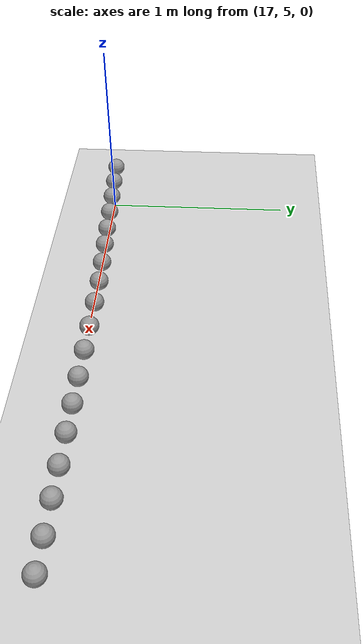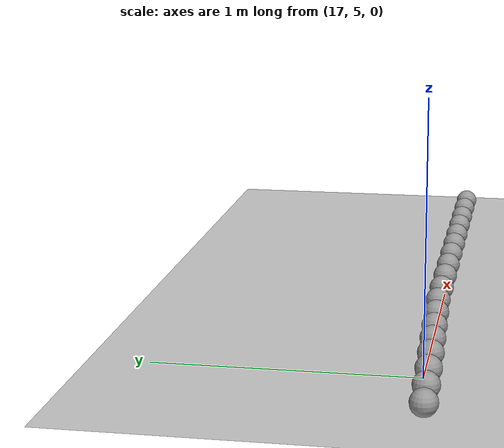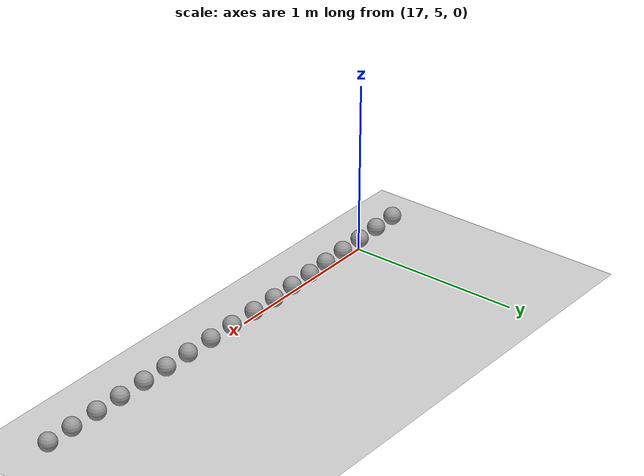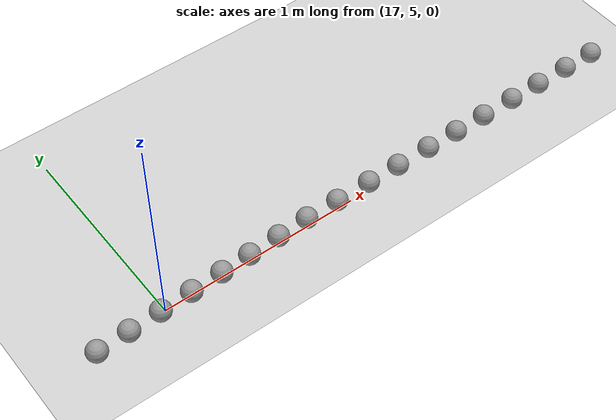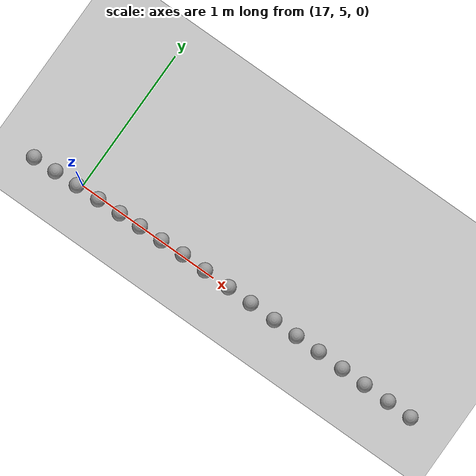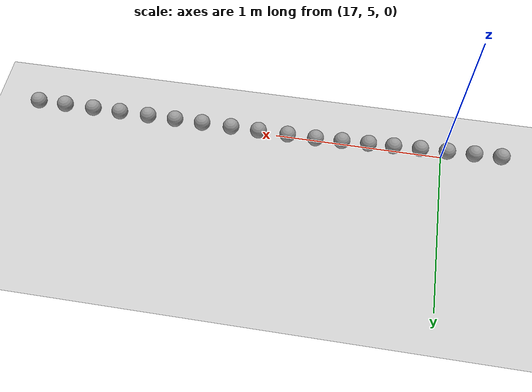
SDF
<sdf version="1.6">
 <world name="default">
  <model name="ground_plane">
   <static>1</static>
   <link name="link">
    <collision name="collision">
     <geometry><plane><normal>0 0 1</normal><size>100 100</size></plane></geometry>
     <surface><friction><ode><mu>100</mu><mu2>50</mu2></ode></friction></surface>
    </collision>
    <visual name="visual">
     <cast_shadows>0</cast_shadows>
     <geometry><plane><normal>0 0 1</normal><size>100 100</size></plane></geometry>
     <material>
      <script><uri>file://media/materials/scripts/gazebo.material</uri><name>Gazebo/Grey</name></script>
     </material>
    </visual>
   </link>
  </model>
  <model name="unit_sphere_0_360">
   <pose>19.500000 5.000000 0.050000 0 -0 0</pose>
   <link name="link">
    <inertial>
     <mass>1</mass>
     <inertia><ixx>0.1</ixx><ixy>0</ixy><ixz>0</ixz><iyy>0.1</iyy><iyz>0</iyz><izz>0.1</izz></inertia>
    </inertial>
    <collision name="collision"><geometry><sphere><radius>0.050000</radius></sphere></geometry></collision>
    <visual name="visual">
     <geometry><sphere><radius>0.050000</radius></sphere></geometry>
     <material>
      <script><name>Gazebo/Grey</name><uri>file://media/materials/scripts/gazebo.material</uri></script>
     </material>
    </visual>
   </link>
  </model>
  <model name="unit_sphere_0_361">
   <pose>19.330000 5.001000 0.050000 0 -0 0</pose>
   <link name="link">
    <inertial>
     <mass>1</mass>
     <inertia><ixx>0.1</ixx><ixy>0</ixy><ixz>0</ixz><iyy>0.1</iyy><iyz>0</iyz><izz>0.1</izz></inertia>
    </inertial>
    <collision name="collision"><geometry><sphere><radius>0.050000</radius></sphere></geometry></collision>
    <visual name="visual">
     <geometry><sphere><radius>0.050000</radius></sphere></geometry>
     <material>
      <script><name>Gazebo/Grey</name><uri>file://media/materials/scripts/gazebo.material</uri></script>
     </material>
    </visual>
   </link>
  </model>
  <model name="unit_sphere_0_362">
   <pose>19.150000 5.002000 0.050000 0 -0 0</pose>
   <link name="link">
    <inertial>
     <mass>1</mass>
     <inertia><ixx>0.1</ixx><ixy>0</ixy><ixz>0</ixz><iyy>0.1</iyy><iyz>0</iyz><izz>0.1</izz></inertia>
    </inertial>
    <collision name="collision"><geometry><sphere><radius>0.050000</radius></sphere></geometry></collision>
    <visual name="visual">
     <geometry><sphere><radius>0.050000</radius></sphere></geometry>
     <material>
      <script><name>Gazebo/Grey</name><uri>file://media/materials/scripts/gazebo.material</uri></script>
     </material>
    </visual>
   </link>
  </model>
  <model name="unit_sphere_0_363">
   <pose>18.980000 5.003000 0.050000 0 -0 0</pose>
   <link name="link">
    <inertial>
     <mass>1</mass>
     <inertia><ixx>0.1</ixx><ixy>0</ixy><ixz>0</ixz><iyy>0.1</iyy><iyz>0</iyz><izz>0.1</izz></inertia>
    </inertial>
    <collision name="collision"><geometry><sphere><radius>0.050000</radius></sphere></geometry></collision>
    <visual name="visual">
     <geometry><sphere><radius>0.050000</radius></sphere></geometry>
     <material>
      <script><name>Gazebo/Grey</name><uri>file://media/materials/scripts/gazebo.material</uri></script>
     </material>
    </visual>
   </link>
  </model>
  <model name="unit_sphere_0_364">
   <pose>18.800000 5.004000 0.050000 0 -0 0</pose>
   <link name="link">
    <inertial>
     <mass>1</mass>
     <inertia><ixx>0.1</ixx><ixy>0</ixy><ixz>0</ixz><iyy>0.1</iyy><iyz>0</iyz><izz>0.1</izz></inertia>
    </inertial>
    <collision name="collision"><geometry><sphere><radius>0.050000</radius></sphere></geometry></collision>
    <visual name="visual">
     <geometry><sphere><radius>0.050000</radius></sphere></geometry>
     <material>
      <script><name>Gazebo/Grey</name><uri>file://media/materials/scripts/gazebo.material</uri></script>
     </material>
    </visual>
   </link>
  </model>
  <model name="unit_sphere_0_365">
   <pose>18.630000 5.005000 0.050000 0 -0 0</pose>
   <link name="link">
    <inertial>
     <mass>1</mass>
     <inertia><ixx>0.1</ixx><ixy>0</ixy><ixz>0</ixz><iyy>0.1</iyy><iyz>0</iyz><izz>0.1</izz></inertia>
    </inertial>
    <collision name="collision"><geometry><sphere><radius>0.050000</radius></sphere></geometry></collision>
    <visual name="visual">
     <geometry><sphere><radius>0.050000</radius></sphere></geometry>
     <material>
      <script><name>Gazebo/Grey</name><uri>file://media/materials/scripts/gazebo.material</uri></script>
     </material>
    </visual>
   </link>
  </model>
  <model name="unit_sphere_0_366">
   <pose>18.460000 5.006000 0.050000 0 -0 0</pose>
   <link name="link">
    <inertial>
     <mass>1</mass>
     <inertia><ixx>0.1</ixx><ixy>0</ixy><ixz>0</ixz><iyy>0.1</iyy><iyz>0</iyz><izz>0.1</izz></inertia>
    </inertial>
    <collision name="collision"><geometry><sphere><radius>0.050000</radius></sphere></geometry></collision>
    <visual name="visual">
     <geometry><sphere><radius>0.050000</radius></sphere></geometry>
     <material>
      <script><name>Gazebo/Grey</name><uri>file://media/materials/scripts/gazebo.material</uri></script>
     </material>
    </visual>
   </link>
  </model>
  <model name="unit_sphere_0_367">
   <pose>18.280000 5.007000 0.050000 0 -0 0</pose>
   <link name="link">
    <inertial>
     <mass>1</mass>
     <inertia><ixx>0.1</ixx><ixy>0</ixy><ixz>0</ixz><iyy>0.1</iyy><iyz>0</iyz><izz>0.1</izz></inertia>
    </inertial>
    <collision name="collision"><geometry><sphere><radius>0.050000</radius></sphere></geometry></collision>
    <visual name="visual">
     <geometry><sphere><radius>0.050000</radius></sphere></geometry>
     <material>
      <script><name>Gazebo/Grey</name><uri>file://media/materials/scripts/gazebo.material</uri></script>
     </material>
    </visual>
   </link>
  </model>
  <model name="unit_sphere_0_368">
   <pose>18.110000 5.008000 0.050000 0 -0 0</pose>
   <link name="link">
    <inertial>
     <mass>1</mass>
     <inertia><ixx>0.1</ixx><ixy>0</ixy><ixz>0</ixz><iyy>0.1</iyy><iyz>0</iyz><izz>0.1</izz></inertia>
    </inertial>
    <collision name="collision"><geometry><sphere><radius>0.050000</radius></sphere></geometry></collision>
    <visual name="visual">
     <geometry><sphere><radius>0.050000</radius></sphere></geometry>
     <material>
      <script><name>Gazebo/Grey</name><uri>file://media/materials/scripts/gazebo.material</uri></script>
     </material>
    </visual>
   </link>
  </model>
  <model name="unit_sphere_0_369">
   <pose>17.930000 5.009000 0.050000 0 -0 0</pose>
   <link name="link">
    <inertial>
     <mass>1</mass>
     <inertia><ixx>0.1</ixx><ixy>0</ixy><ixz>0</ixz><iyy>0.1</iyy><iyz>0</iyz><izz>0.1</izz></inertia>
    </inertial>
    <collision name="collision"><geometry><sphere><radius>0.050000</radius></sphere></geometry></collision>
    <visual name="visual">
     <geometry><sphere><radius>0.050000</radius></sphere></geometry>
     <material>
      <script><name>Gazebo/Grey</name><uri>file://media/materials/scripts/gazebo.material</uri></script>
     </material>
    </visual>
   </link>
  </model>
  <model name="unit_sphere_0_370">
   <pose>17.760000 5.010000 0.050000 0 -0 0</pose>
   <link name="link">
    <inertial>
     <mass>1</mass>
     <inertia><ixx>0.1</ixx><ixy>0</ixy><ixz>0</ixz><iyy>0.1</iyy><iyz>0</iyz><izz>0.1</izz></inertia>
    </inertial>
    <collision name="collision"><geometry><sphere><radius>0.050000</radius></sphere></geometry></collision>
    <visual name="visual">
     <geometry><sphere><radius>0.050000</radius></sphere></geometry>
     <material>
      <script><name>Gazebo/Grey</name><uri>file://media/materials/scripts/gazebo.material</uri></script>
     </material>
    </visual>
   </link>
  </model>
  <model name="unit_sphere_0_371">
   <pose>17.600000 5.004000 0.050000 0 -0 0</pose>
   <link name="link">
    <inertial>
     <mass>1</mass>
     <inertia><ixx>0.1</ixx><ixy>0</ixy><ixz>0</ixz><iyy>0.1</iyy><iyz>0</iyz><izz>0.1</izz></inertia>
    </inertial>
    <collision name="collision"><geometry><sphere><radius>0.050000</radius></sphere></geometry></collision>
    <visual name="visual">
     <geometry><sphere><radius>0.050000</radius></sphere></geometry>
     <material>
      <script><name>Gazebo/Grey</name><uri>file://media/materials/scripts/gazebo.material</uri></script>
     </material>
    </visual>
   </link>
  </model>
  <model name="unit_sphere_0_372">
   <pose>17.440000 4.998000 0.050000 0 -0 0</pose>
   <link name="link">
    <inertial>
     <mass>1</mass>
     <inertia><ixx>0.1</ixx><ixy>0</ixy><ixz>0</ixz><iyy>0.1</iyy><iyz>0</iyz><izz>0.1</izz></inertia>
    </inertial>
    <collision name="collision"><geometry><sphere><radius>0.050000</radius></sphere></geometry></collision>
    <visual name="visual">
     <geometry><sphere><radius>0.050000</radius></sphere></geometry>
     <material>
      <script><name>Gazebo/Grey</name><uri>file://media/materials/scripts/gazebo.material</uri></script>
     </material>
    </visual>
   </link>
  </model>
  <model name="unit_sphere_0_373">
   <pose>17.290000 4.992000 0.050000 0 -0 0</pose>
   <link name="link">
    <inertial>
     <mass>1</mass>
     <inertia><ixx>0.1</ixx><ixy>0</ixy><ixz>0</ixz><iyy>0.1</iyy><iyz>0</iyz><izz>0.1</izz></inertia>
    </inertial>
    <collision name="collision"><geometry><sphere><radius>0.050000</radius></sphere></geometry></collision>
    <visual name="visual">
     <geometry><sphere><radius>0.050000</radius></sphere></geometry>
     <material>
      <script><name>Gazebo/Grey</name><uri>file://media/materials/scripts/gazebo.material</uri></script>
     </material>
    </visual>
   </link>
  </model>
  <model name="unit_sphere_0_374">
   <pose>17.130000 4.986000 0.050000 0 -0 0</pose>
   <link name="link">
    <inertial>
     <mass>1</mass>
     <inertia><ixx>0.1</ixx><ixy>0</ixy><ixz>0</ixz><iyy>0.1</iyy><iyz>0</iyz><izz>0.1</izz></inertia>
    </inertial>
    <collision name="collision"><geometry><sphere><radius>0.050000</radius></sphere></geometry></collision>
    <visual name="visual">
     <geometry><sphere><radius>0.050000</radius></sphere></geometry>
     <material>
      <script><name>Gazebo/Grey</name><uri>file://media/materials/scripts/gazebo.material</uri></script>
     </material>
    </visual>
   </link>
  </model>
  <model name="unit_sphere_0_375">
   <pose>16.970000 4.980000 0.050000 0 -0 0</pose>
   <link name="link">
    <inertial>
     <mass>1</mass>
     <inertia><ixx>0.1</ixx><ixy>0</ixy><ixz>0</ixz><iyy>0.1</iyy><iyz>0</iyz><izz>0.1</izz></inertia>
    </inertial>
    <collision name="collision"><geometry><sphere><radius>0.050000</radius></sphere></geometry></collision>
    <visual name="visual">
     <geometry><sphere><radius>0.050000</radius></sphere></geometry>
     <material>
      <script><name>Gazebo/Grey</name><uri>file://media/materials/scripts/gazebo.material</uri></script>
     </material>
    </visual>
   </link>
  </model>
  <model name="unit_sphere_0_376">
   <pose>16.810000 4.974000 0.050000 0 -0 0</pose>
   <link name="link">
    <inertial>
     <mass>1</mass>
     <inertia><ixx>0.1</ixx><ixy>0</ixy><ixz>0</ixz><iyy>0.1</iyy><iyz>0</iyz><izz>0.1</izz></inertia>
    </inertial>
    <collision name="collision"><geometry><sphere><radius>0.050000</radius></sphere></geometry></collision>
    <visual name="visual">
     <geometry><sphere><radius>0.050000</radius></sphere></geometry>
     <material>
      <script><name>Gazebo/Grey</name><uri>file://media/materials/scripts/gazebo.material</uri></script>
     </material>
    </visual>
   </link>
  </model>
  <model name="unit_sphere_0_377">
   <pose>16.650000 4.968000 0.050000 0 -0 0</pose>
   <link name="link">
    <inertial>
     <mass>1</mass>
     <inertia><ixx>0.1</ixx><ixy>0</ixy><ixz>0</ixz><iyy>0.1</iyy><iyz>0</iyz><izz>0.1</izz></inertia>
    </inertial>
    <collision name="collision"><geometry><sphere><radius>0.050000</radius></sphere></geometry></collision>
    <visual name="visual">
     <geometry><sphere><radius>0.050000</radius></sphere></geometry>
     <material>
      <script><name>Gazebo/Grey</name><uri>file://media/materials/scripts/gazebo.material</uri></script>
     </material>
    </visual>
   </link>
  </model>
 </world>
</sdf>
